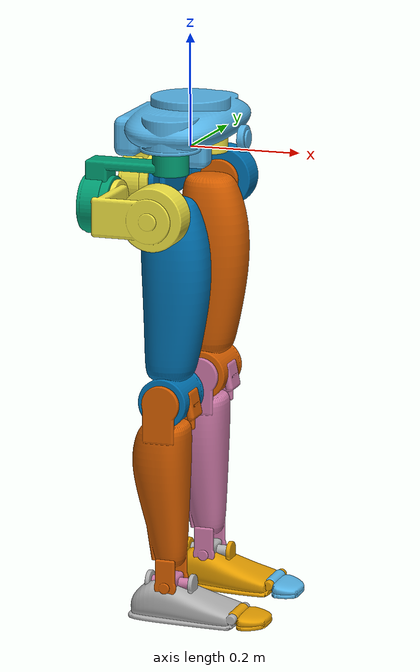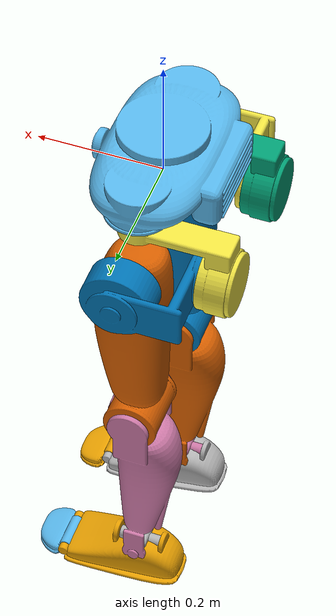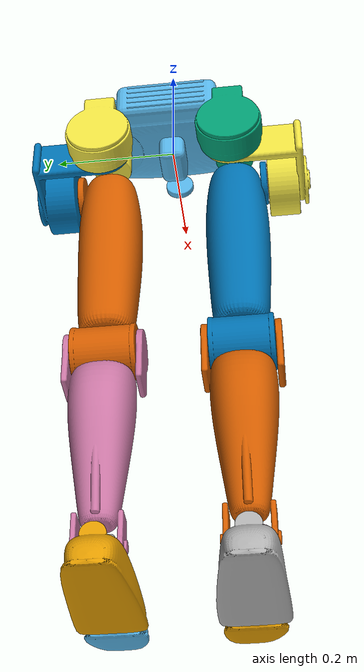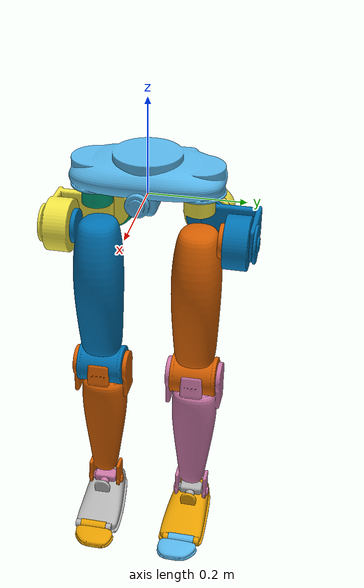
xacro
<?xml version="1.0"?>
<robot xmlns:xacro="http://www.ros.org/wiki/xacro">

  <!-- Geometry (keep in sync with KIN in blender/build_parts.py) -->
  <xacro:property name="hip_y"        value="0.105"/>  <!-- 0.085 let the thighs collide -->
  <xacro:property name="hip_yaw_z"    value="-0.03"/>
  <xacro:property name="hip_roll_z"   value="-0.06"/>
  <xacro:property name="thigh_length" value="0.34"/>
  <xacro:property name="shin_length"  value="0.34"/>
  <xacro:property name="ankle_height" value="0.065"/>
  <xacro:property name="toe_x"        value="0.125"/>
  <xacro:property name="toe_z"        value="-0.045"/>
  <!-- pelvis frame height when standing with straight legs -->
  <xacro:property name="pelvis_standing_height"
                  value="${ankle_height + shin_length + thigh_length - hip_roll_z - hip_yaw_z}"/>

  <xacro:property name="leg_mesh_dir" value="package://my_robot_description/meshes/legs"/>

  <!-- Solid-body inertia helpers (the ones in common_properties.xacro are kept
       unchanged for the existing links) -->
  <xacro:macro name="solid_box_inertial" params="m x y z ox:=0 oy:=0 oz:=0">
    <inertial>
      <origin xyz="${ox} ${oy} ${oz}" rpy="0 0 0"/>
      <mass value="${m}"/>
      <inertia ixx="${m*(y*y+z*z)/12.0}" ixy="0" ixz="0"
               iyy="${m*(x*x+z*z)/12.0}" iyz="0" izz="${m*(x*x+y*y)/12.0}"/>
    </inertial>
  </xacro:macro>

  <xacro:macro name="solid_cyl_inertial" params="m r h ox:=0 oy:=0 oz:=0">
    <inertial>
      <origin xyz="${ox} ${oy} ${oz}" rpy="0 0 0"/>
      <mass value="${m}"/>
      <inertia ixx="${m*(3*r*r+h*h)/12.0}" ixy="0" ixz="0"
               iyy="${m*(3*r*r+h*h)/12.0}" iyz="0" izz="${m*r*r/2.0}"/>
    </inertial>
  </xacro:macro>

  <xacro:macro name="mesh_visual" params="file">
    <visual>
      <origin xyz="0 0 0" rpy="0 0 0"/>
      <geometry><mesh filename="${leg_mesh_dir}/${file}"/></geometry>
    </visual>
  </xacro:macro>

  <!-- ===================== Pelvis ===================== -->
  <!-- base_link is the floating root (pelvis frame).  It carries no inertia so
       KDL / robot_state_publisher are happy; the pelvis body hangs off it. -->
  <link name="base_link"/>

  <link name="pelvis_link">
    <xacro:mesh_visual file="pelvis.obj"/>
    <collision>
      <origin xyz="0 0 0.03" rpy="0 0 0"/>
      <geometry><box size="0.18 0.30 0.09"/></geometry>
    </collision>
    <!-- shell, battery and both hip-yaw actuators -->
    <xacro:solid_box_inertial m="9.0" x="0.18" y="0.30" z="0.10" oz="0.015"/>
  </link>

  <joint name="base_pelvis_joint" type="fixed">
    <parent link="base_link"/>
    <child link="pelvis_link"/>
    <origin xyz="0 0 0" rpy="0 0 0"/>
  </joint>

  <link name="imu_frame"/>
  <joint name="imu_joint" type="fixed">
    <parent link="pelvis_link"/>
    <child link="imu_frame"/>
    <origin xyz="0 0 0" rpy="0 0 0"/>
  </joint>

  <!-- ===================== Leg ===================== -->
  <!-- side: left|right, s: +1 (left) / -1 (right) -->
  <xacro:macro name="hruh_leg" params="side s">

    <!-- Hip yaw: internal/external rotation 40 / 43 deg (one leg reaches its mechanism limit at 45;
         both feet toed out > 21 deg make the rear roll actuators touch: self-collision) -->
    <joint name="${side}_hip_yaw_joint" type="revolute">
      <parent link="pelvis_link"/>
      <child link="${side}_hip_yaw_link"/>
      <origin xyz="0 ${s*hip_y} ${hip_yaw_z}" rpy="0 0 0"/>
      <axis xyz="0 0 1"/>
      <limit lower="${-0.70 if s > 0 else -0.75}" upper="${0.75 if s > 0 else 0.70}" effort="150" velocity="8.0"/>
      <dynamics damping="0.5" friction="0.1"/>
    </joint>
    <link name="${side}_hip_yaw_link">
      <xacro:mesh_visual file="${side}_hip_yaw.obj"/>
      <!-- carries the hip roll actuator, 13 cm behind the hip centre -->
      <collision>
        <origin xyz="-0.130 0 ${hip_roll_z}" rpy="0 ${pi/2} 0"/>
        <geometry><cylinder radius="0.050" length="0.055"/></geometry>
      </collision>
      <xacro:solid_cyl_inertial m="2.7" r="0.05" h="0.06" ox="-0.115" oz="-0.055"/>
    </link>

    <joint name="${side}_hip_roll_joint" type="revolute">
      <parent link="${side}_hip_yaw_link"/>
      <child link="${side}_hip_roll_link"/>
      <origin xyz="0 0 ${hip_roll_z}" rpy="0 0 0"/>
      <axis xyz="1 0 0"/>
      <limit lower="${-0.42 if s > 0 else -0.54}" upper="${0.54 if s > 0 else 0.42}" effort="200" velocity="8.0"/>
      <dynamics damping="0.5" friction="0.1"/>
    </joint>
    <link name="${side}_hip_roll_link">
      <xacro:mesh_visual file="${side}_hip_roll.obj"/>
      <!-- carries the hip pitch actuator, outside the thigh -->
      <collision>
        <origin xyz="0 ${s*0.080} 0" rpy="${pi/2} 0 0"/>
        <geometry><cylinder radius="0.056" length="0.050"/></geometry>
      </collision>
      <xacro:solid_box_inertial m="2.9" x="0.12" y="0.10" z="0.11" ox="-0.02" oy="${s*0.07}"/>
    </link>

    <!-- Hip pitch: flexion 89 deg (negative) / extension 29 deg (positive). The thigh meets the
         hip-yaw link at 91.6 deg flexion and the roll actuator / pelvis at 30 deg extension -->
    <joint name="${side}_hip_pitch_joint" type="revolute">
      <parent link="${side}_hip_roll_link"/>
      <child link="${side}_thigh_link"/>
      <origin xyz="0 0 0" rpy="0 0 0"/>
      <axis xyz="0 1 0"/>
      <limit lower="-1.55" upper="0.50" effort="250" velocity="8.0"/>
      <dynamics damping="0.5" friction="0.1"/>
    </joint>
    <link name="${side}_thigh_link">
      <xacro:mesh_visual file="${side}_thigh.obj"/>
      <collision>
        <origin xyz="0.005 0 ${-thigh_length*0.47}" rpy="0 0 0"/>
        <geometry><cylinder radius="0.050" length="${thigh_length*0.68}"/></geometry>
      </collision>
      <!-- structure + knee actuator at the bottom -->
      <xacro:solid_cyl_inertial m="4.3" r="0.055" h="${thigh_length}" oz="${-thigh_length*0.55}"/>
    </link>

    <!-- Knee: flexion 0..140 deg -->
    <joint name="${side}_knee_joint" type="revolute">
      <parent link="${side}_thigh_link"/>
      <child link="${side}_shin_link"/>
      <origin xyz="0 0 ${-thigh_length}" rpy="0 0 0"/>
      <axis xyz="0 1 0"/>
      <limit lower="0.0" upper="2.44" effort="300" velocity="10.0"/>
      <dynamics damping="0.5" friction="0.1"/>
    </joint>
    <link name="${side}_shin_link">
      <xacro:mesh_visual file="${side}_shin.obj"/>
      <collision>
        <origin xyz="-0.008 0 ${-shin_length*0.5}" rpy="0 0 0"/>
        <geometry><cylinder radius="0.045" length="${shin_length*0.66}"/></geometry>
      </collision>
      <xacro:solid_cyl_inertial m="3.0" r="0.045" h="${shin_length}" ox="-0.01" oz="${-shin_length*0.38}"/>
    </link>

    <!-- Ankle pitch: dorsiflexion 30 deg (negative) / plantarflexion 50 deg (positive) -->
    <joint name="${side}_ankle_pitch_joint" type="revolute">
      <parent link="${side}_shin_link"/>
      <child link="${side}_ankle_link"/>
      <origin xyz="0 0 ${-shin_length}" rpy="0 0 0"/>
      <axis xyz="0 1 0"/>
      <limit lower="-0.52" upper="0.87" effort="150" velocity="10.0"/>
      <dynamics damping="0.5" friction="0.1"/>
    </joint>
    <link name="${side}_ankle_link">
      <xacro:mesh_visual file="${side}_ankle.obj"/>
      <xacro:solid_box_inertial m="0.4" x="0.04" y="0.06" z="0.04"/>
    </link>

    <!-- Ankle roll: inversion 35 deg / eversion 20 deg -->
    <joint name="${side}_ankle_roll_joint" type="revolute">
      <parent link="${side}_ankle_link"/>
      <child link="${side}_foot_link"/>
      <origin xyz="0 0 0" rpy="0 0 0"/>
      <axis xyz="1 0 0"/>
      <limit lower="${-0.61 if s > 0 else -0.35}" upper="${0.35 if s > 0 else 0.61}" effort="100" velocity="10.0"/>
      <dynamics damping="0.5" friction="0.1"/>
    </joint>
    <link name="${side}_foot_link">
      <xacro:mesh_visual file="${side}_foot.obj"/>
      <!-- flat sole box: heel to the ball of the foot -->
      <collision>
        <origin xyz="${(toe_x - 0.073)/2.0} ${-s*0.003} ${-ankle_height + 0.012}" rpy="0 0 0"/>
        <geometry><box size="${toe_x + 0.073} 0.098 0.024"/></geometry>
      </collision>
      <xacro:solid_box_inertial m="1.1" x="0.2" y="0.09" z="0.05" ox="0.025" oz="-0.04"/>
    </link>

    <!-- Toe: extension 60 deg (negative, roll-off) / flexion 20 deg -->
    <joint name="${side}_toe_joint" type="revolute">
      <parent link="${side}_foot_link"/>
      <child link="${side}_toe_link"/>
      <origin xyz="${toe_x} 0 ${toe_z}" rpy="0 0 0"/>
      <axis xyz="0 1 0"/>
      <limit lower="-1.05" upper="0.35" effort="40" velocity="10.0"/>
      <dynamics damping="0.3" friction="0.05"/>
    </joint>
    <link name="${side}_toe_link">
      <xacro:mesh_visual file="${side}_toe.obj"/>
      <collision>
        <origin xyz="0.028 ${-s*0.006} ${-(ankle_height + toe_z) + 0.009}" rpy="0 0 0"/>
        <geometry><box size="0.054 0.088 0.018"/></geometry>
      </collision>
      <xacro:solid_box_inertial m="0.2" x="0.06" y="0.09" z="0.02" ox="0.028"/>
    </link>

    <gazebo reference="${side}_foot_link">
      <mu1>1.5</mu1>
      <mu2>1.5</mu2>
    </gazebo>
    <gazebo reference="${side}_toe_link">
      <mu1>1.5</mu1>
      <mu2>1.5</mu2>
    </gazebo>
  </xacro:macro>

  <xacro:hruh_leg side="left" s="1"/>
  <xacro:hruh_leg side="right" s="-1"/>

</robot>
